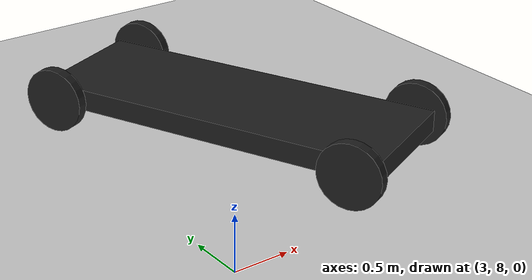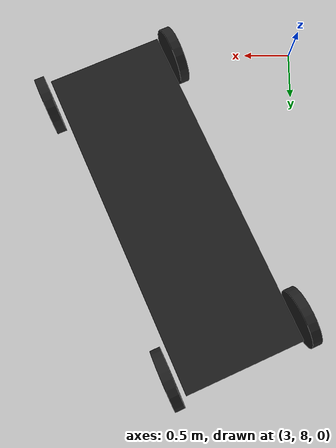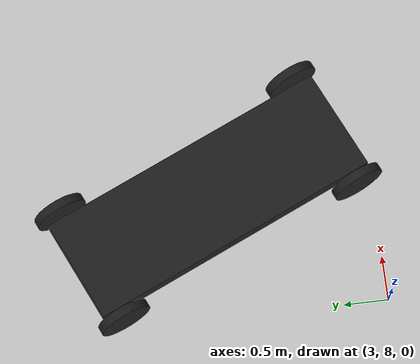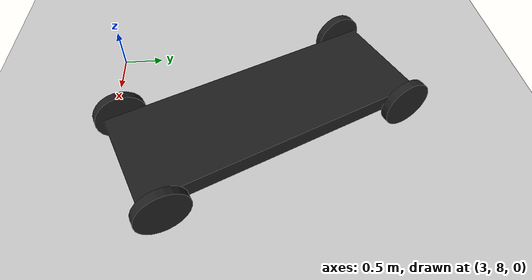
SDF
<sdf version="1.4">
 <world name="ITS_world">
  <include><uri>model://ground_plane</uri></include>
  <include><uri>model://sun</uri></include>
  <model name="car">
   <static>true</static>
   <pose>4.32696 9.84889 0.05 -0.000712 -0.000333 1.99314</pose>
   <link name="chassis">
    <pose>0 0 0.3 0 -0 0</pose>
    <collision name="collision"><geometry><box><size>3.4 1.2 0.2</size></box></geometry></collision>
    <visual name="visual">
     <geometry><box><size>3.4 1.2 0.2</size></box></geometry>
     <material>
      <script><uri>file://media/materials/scripts/gazebo.material</uri><name>Gazebo/FlatBlack</name></script>
     </material>
    </visual>
   </link>
   <link name="front_left_wheel">
    <pose>1.5 0.7 0.3 -0 1.5707 1.5707</pose>
    <collision name="collision">
     <geometry><cylinder><radius>0.3</radius><length>0.1</length></cylinder></geometry>
    </collision>
    <visual name="visual">
     <geometry><cylinder><radius>0.3</radius><length>0.1</length></cylinder></geometry>
     <material>
      <script><uri>file://media/materials/scripts/gazebo.material</uri><name>Gazebo/Black</name></script>
     </material>
    </visual>
   </link>
   <link name="front_right_wheel">
    <pose>1.5 -0.7 0.3 -0 1.5707 1.5707</pose>
    <collision name="collision">
     <geometry><cylinder><radius>0.3</radius><length>0.1</length></cylinder></geometry>
    </collision>
    <visual name="visual">
     <geometry><cylinder><radius>0.3</radius><length>0.1</length></cylinder></geometry>
     <material>
      <script><uri>file://media/materials/scripts/gazebo.material</uri><name>Gazebo/Black</name></script>
     </material>
    </visual>
   </link>
   <link name="back_right_wheel">
    <pose>-1.5 -0.7 0.3 -0 1.5707 1.5707</pose>
    <collision name="collision">
     <geometry><cylinder><radius>0.3</radius><length>0.1</length></cylinder></geometry>
    </collision>
    <visual name="visual">
     <geometry><cylinder><radius>0.3</radius><length>0.1</length></cylinder></geometry>
     <material>
      <script><uri>file://media/materials/scripts/gazebo.material</uri><name>Gazebo/Black</name></script>
     </material>
    </visual>
   </link>
   <link name="back_left_wheel">
    <pose>-1.5 0.7 0.3 -0 1.5707 1.5707</pose>
    <collision name="collision">
     <geometry><cylinder><radius>0.3</radius><length>0.1</length></cylinder></geometry>
    </collision>
    <visual name="visual">
     <geometry><cylinder><radius>0.3</radius><length>0.1</length></cylinder></geometry>
     <material>
      <script><uri>file://media/materials/scripts/gazebo.material</uri><name>Gazebo/Black</name></script>
     </material>
    </visual>
   </link>
  </model>
 </world>
</sdf>
